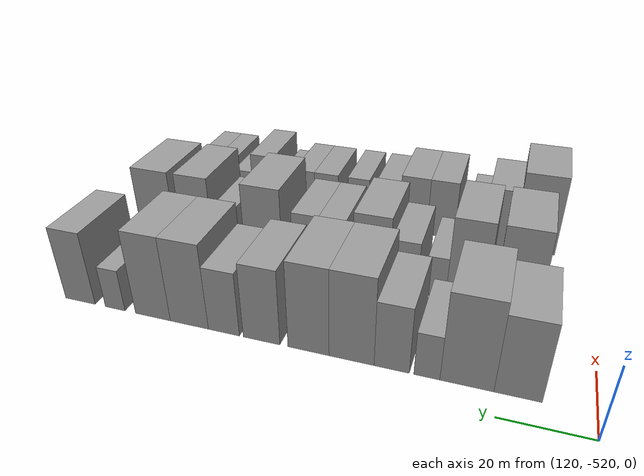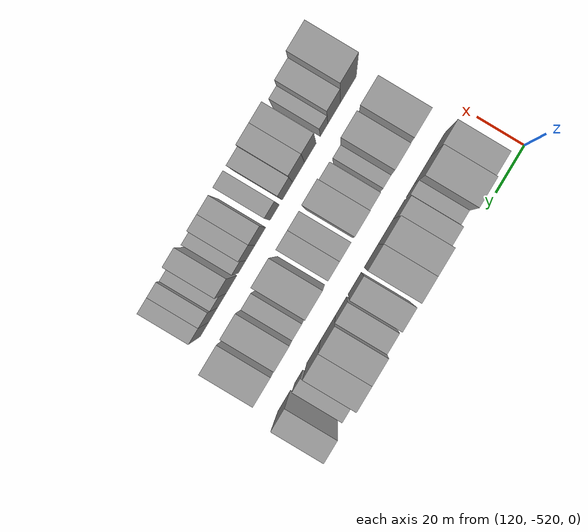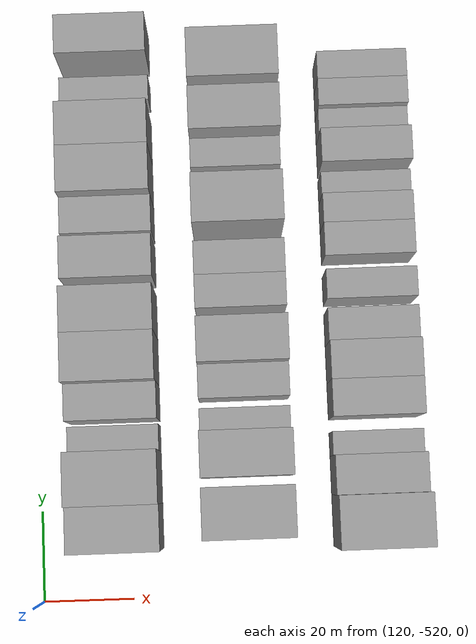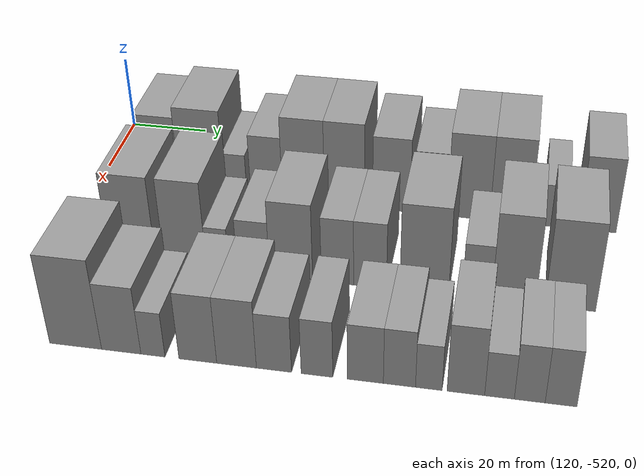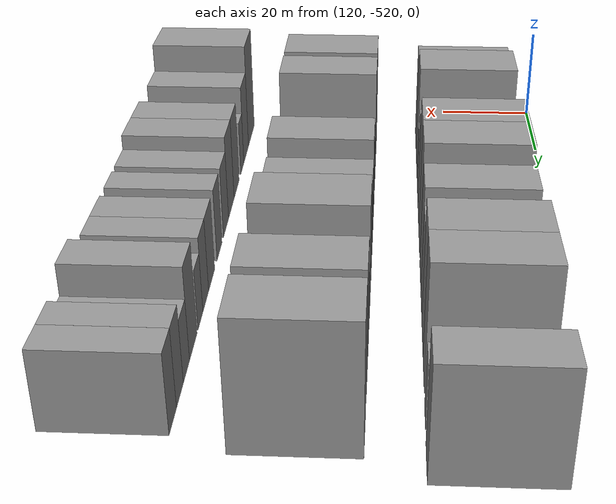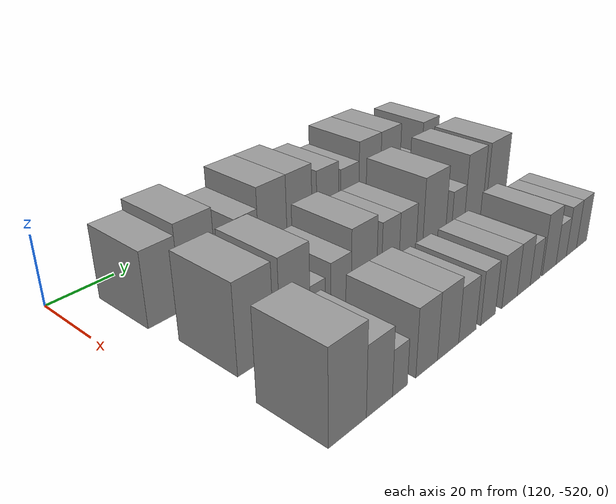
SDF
<sdf version="1.6">
 <world name="default">
  <model name="building_345">
   <static>1</static>
   <pose>137.0000 -504.0115 0 0.000000 0.000000 0.000000</pose>
   <link name="link">
    <pose>0 0 10.50 0 0 0</pose>
    <collision name="collision"><geometry><box><size>20.0000 9.9769 21.0000</size></box></geometry></collision>
    <visual name="visual">
     <cast_shadows>0</cast_shadows>
     <geometry><box><size>20.0000 9.9769 21.0000</size></box></geometry>
     <material>
      <script>
       <uri>model://grey_wall/materials/scripts</uri>
       <uri>model://grey_wall/materials/textures</uri>
       <name>vrc/grey_wall</name>
      </script>
     </material>
    </visual>
   </link>
  </model>
  <model name="building_346">
   <static>1</static>
   <pose>137.0000 -493.2510 0 0.000000 0.000000 0.000000</pose>
   <link name="link">
    <pose>0 0 12.00 0 0 0</pose>
    <collision name="collision"><geometry><box><size>20.0000 11.5442 24.0000</size></box></geometry></collision>
    <visual name="visual">
     <cast_shadows>0</cast_shadows>
     <geometry><box><size>20.0000 11.5442 24.0000</size></box></geometry>
     <material>
      <script>
       <uri>model://grey_wall/materials/scripts</uri>
       <uri>model://grey_wall/materials/textures</uri>
       <name>vrc/grey_wall</name>
      </script>
     </material>
    </visual>
   </link>
  </model>
  <model name="building_347">
   <static>1</static>
   <pose>137.0000 -484.6109 0 0.000000 0.000000 0.000000</pose>
   <link name="link">
    <pose>0 0 6.00 0 0 0</pose>
    <collision name="collision"><geometry><box><size>20.0000 5.7360 12.0000</size></box></geometry></collision>
    <visual name="visual">
     <cast_shadows>0</cast_shadows>
     <geometry><box><size>20.0000 5.7360 12.0000</size></box></geometry>
     <material>
      <script>
       <uri>model://grey_wall/materials/scripts</uri>
       <uri>model://grey_wall/materials/textures</uri>
       <name>vrc/grey_wall</name>
      </script>
     </material>
    </visual>
   </link>
  </model>
  <model name="building_348">
   <static>1</static>
   <pose>137.0000 -476.7423 0 0.000000 0.000000 0.000000</pose>
   <link name="link">
    <pose>0 0 9.00 0 0 0</pose>
    <collision name="collision"><geometry><box><size>20.0000 8.0011 18.0000</size></box></geometry></collision>
    <visual name="visual">
     <cast_shadows>0</cast_shadows>
     <geometry><box><size>20.0000 8.0011 18.0000</size></box></geometry>
     <material>
      <script>
       <uri>model://grey_wall/materials/scripts</uri>
       <uri>model://grey_wall/materials/textures</uri>
       <name>vrc/grey_wall</name>
      </script>
     </material>
    </visual>
   </link>
  </model>
  <model name="building_349">
   <static>1</static>
   <pose>137.0000 -467.4616 0 0.000000 0.000000 0.000000</pose>
   <link name="link">
    <pose>0 0 12.00 0 0 0</pose>
    <collision name="collision"><geometry><box><size>20.0000 10.5604 24.0000</size></box></geometry></collision>
    <visual name="visual">
     <cast_shadows>0</cast_shadows>
     <geometry><box><size>20.0000 10.5604 24.0000</size></box></geometry>
     <material>
      <script>
       <uri>model://grey_wall/materials/scripts</uri>
       <uri>model://grey_wall/materials/textures</uri>
       <name>vrc/grey_wall</name>
      </script>
     </material>
    </visual>
   </link>
  </model>
  <model name="building_350">
   <static>1</static>
   <pose>137.0000 -457.1980 0 0.000000 0.000000 0.000000</pose>
   <link name="link">
    <pose>0 0 12.00 0 0 0</pose>
    <collision name="collision"><geometry><box><size>20.0000 9.9667 24.0000</size></box></geometry></collision>
    <visual name="visual">
     <cast_shadows>0</cast_shadows>
     <geometry><box><size>20.0000 9.9667 24.0000</size></box></geometry>
     <material>
      <script>
       <uri>model://grey_wall/materials/scripts</uri>
       <uri>model://grey_wall/materials/textures</uri>
       <name>vrc/grey_wall</name>
      </script>
     </material>
    </visual>
   </link>
  </model>
  <model name="building_351">
   <static>1</static>
   <pose>137.0000 -445.5944 0 0.000000 0.000000 0.000000</pose>
   <link name="link">
    <pose>0 0 10.50 0 0 0</pose>
    <collision name="collision"><geometry><box><size>20.0000 9.2406 21.0000</size></box></geometry></collision>
    <visual name="visual">
     <cast_shadows>0</cast_shadows>
     <geometry><box><size>20.0000 9.2406 21.0000</size></box></geometry>
     <material>
      <script>
       <uri>model://grey_wall/materials/scripts</uri>
       <uri>model://grey_wall/materials/textures</uri>
       <name>vrc/grey_wall</name>
      </script>
     </material>
    </visual>
   </link>
  </model>
  <model name="building_352">
   <static>1</static>
   <pose>137.0000 -435.9169 0 0.000000 0.000000 0.000000</pose>
   <link name="link">
    <pose>0 0 9.00 0 0 0</pose>
    <collision name="collision"><geometry><box><size>20.0000 8.1144 18.0000</size></box></geometry></collision>
    <visual name="visual">
     <cast_shadows>0</cast_shadows>
     <geometry><box><size>20.0000 8.1144 18.0000</size></box></geometry>
     <material>
      <script>
       <uri>model://grey_wall/materials/scripts</uri>
       <uri>model://grey_wall/materials/textures</uri>
       <name>vrc/grey_wall</name>
      </script>
     </material>
    </visual>
   </link>
  </model>
  <model name="building_353">
   <static>1</static>
   <pose>137.0000 -426.7456 0 0.000000 0.000000 0.000000</pose>
   <link name="link">
    <pose>0 0 12.00 0 0 0</pose>
    <collision name="collision"><geometry><box><size>20.0000 10.2281 24.0000</size></box></geometry></collision>
    <visual name="visual">
     <cast_shadows>0</cast_shadows>
     <geometry><box><size>20.0000 10.2281 24.0000</size></box></geometry>
     <material>
      <script>
       <uri>model://grey_wall/materials/scripts</uri>
       <uri>model://grey_wall/materials/textures</uri>
       <name>vrc/grey_wall</name>
      </script>
     </material>
    </visual>
   </link>
  </model>
  <model name="building_354">
   <static>1</static>
   <pose>137.0000 -416.7948 0 0.000000 0.000000 0.000000</pose>
   <link name="link">
    <pose>0 0 12.00 0 0 0</pose>
    <collision name="collision"><geometry><box><size>20.0000 9.6735 24.0000</size></box></geometry></collision>
    <visual name="visual">
     <cast_shadows>0</cast_shadows>
     <geometry><box><size>20.0000 9.6735 24.0000</size></box></geometry>
     <material>
      <script>
       <uri>model://grey_wall/materials/scripts</uri>
       <uri>model://grey_wall/materials/textures</uri>
       <name>vrc/grey_wall</name>
      </script>
     </material>
    </visual>
   </link>
  </model>
  <model name="building_355">
   <static>1</static>
   <pose>137.0000 -406.1504 0 0.000000 0.000000 0.000000</pose>
   <link name="link">
    <pose>0 0 6.00 0 0 0</pose>
    <collision name="collision"><geometry><box><size>20.0000 5.6153 12.0000</size></box></geometry></collision>
    <visual name="visual">
     <cast_shadows>0</cast_shadows>
     <geometry><box><size>20.0000 5.6153 12.0000</size></box></geometry>
     <material>
      <script>
       <uri>model://grey_wall/materials/scripts</uri>
       <uri>model://grey_wall/materials/textures</uri>
       <name>vrc/grey_wall</name>
      </script>
     </material>
    </visual>
   </link>
  </model>
  <model name="building_356">
   <static>1</static>
   <pose>137.0000 -395.9926 0 0.000000 0.000000 0.000000</pose>
   <link name="link">
    <pose>0 0 10.50 0 0 0</pose>
    <collision name="collision"><geometry><box><size>20.0000 8.7003 21.0000</size></box></geometry></collision>
    <visual name="visual">
     <cast_shadows>0</cast_shadows>
     <geometry><box><size>20.0000 8.7003 21.0000</size></box></geometry>
     <material>
      <script>
       <uri>model://grey_wall/materials/scripts</uri>
       <uri>model://grey_wall/materials/textures</uri>
       <name>vrc/grey_wall</name>
      </script>
     </material>
    </visual>
   </link>
  </model>
  <model name="building_452">
   <static>1</static>
   <pose>166.0000 -501.4610 0 0.000000 0.000000 0.000000</pose>
   <link name="link">
    <pose>0 0 12.00 0 0 0</pose>
    <collision name="collision"><geometry><box><size>20.0000 11.0780 24.0000</size></box></geometry></collision>
    <visual name="visual">
     <cast_shadows>0</cast_shadows>
     <geometry><box><size>20.0000 11.0780 24.0000</size></box></geometry>
     <material>
      <script>
       <uri>model://grey_wall/materials/scripts</uri>
       <uri>model://grey_wall/materials/textures</uri>
       <name>vrc/grey_wall</name>
      </script>
     </material>
    </visual>
   </link>
  </model>
  <model name="building_453">
   <static>1</static>
   <pose>166.0000 -488.9550 0 0.000000 0.000000 0.000000</pose>
   <link name="link">
    <pose>0 0 12.00 0 0 0</pose>
    <collision name="collision"><geometry><box><size>20.0000 9.9340 24.0000</size></box></geometry></collision>
    <visual name="visual">
     <cast_shadows>0</cast_shadows>
     <geometry><box><size>20.0000 9.9340 24.0000</size></box></geometry>
     <material>
      <script>
       <uri>model://grey_wall/materials/scripts</uri>
       <uri>model://grey_wall/materials/textures</uri>
       <name>vrc/grey_wall</name>
      </script>
     </material>
    </visual>
   </link>
  </model>
  <model name="building_454">
   <static>1</static>
   <pose>166.0000 -481.3633 0 0.000000 0.000000 0.000000</pose>
   <link name="link">
    <pose>0 0 6.00 0 0 0</pose>
    <collision name="collision"><geometry><box><size>20.0000 5.2494 12.0000</size></box></geometry></collision>
    <visual name="visual">
     <cast_shadows>0</cast_shadows>
     <geometry><box><size>20.0000 5.2494 12.0000</size></box></geometry>
     <material>
      <script>
       <uri>model://grey_wall/materials/scripts</uri>
       <uri>model://grey_wall/materials/textures</uri>
       <name>vrc/grey_wall</name>
      </script>
     </material>
    </visual>
   </link>
  </model>
  <model name="building_455">
   <static>1</static>
   <pose>166.0000 -473.0006 0 0.000000 0.000000 0.000000</pose>
   <link name="link">
    <pose>0 0 7.50 0 0 0</pose>
    <collision name="collision"><geometry><box><size>20.0000 7.4759 15.0000</size></box></geometry></collision>
    <visual name="visual">
     <cast_shadows>0</cast_shadows>
     <geometry><box><size>20.0000 7.4759 15.0000</size></box></geometry>
     <material>
      <script>
       <uri>model://grey_wall/materials/scripts</uri>
       <uri>model://grey_wall/materials/textures</uri>
       <name>vrc/grey_wall</name>
      </script>
     </material>
    </visual>
   </link>
  </model>
  <model name="building_456">
   <static>1</static>
   <pose>166.0000 -464.3026 0 0.000000 0.000000 0.000000</pose>
   <link name="link">
    <pose>0 0 10.50 0 0 0</pose>
    <collision name="collision"><geometry><box><size>20.0000 9.9203 21.0000</size></box></geometry></collision>
    <visual name="visual">
     <cast_shadows>0</cast_shadows>
     <geometry><box><size>20.0000 9.9203 21.0000</size></box></geometry>
     <material>
      <script>
       <uri>model://grey_wall/materials/scripts</uri>
       <uri>model://grey_wall/materials/textures</uri>
       <name>vrc/grey_wall</name>
      </script>
     </material>
    </visual>
   </link>
  </model>
  <model name="building_457">
   <static>1</static>
   <pose>166.0000 -453.6664 0 0.000000 0.000000 0.000000</pose>
   <link name="link">
    <pose>0 0 9.00 0 0 0</pose>
    <collision name="collision"><geometry><box><size>20.0000 7.3521 18.0000</size></box></geometry></collision>
    <visual name="visual">
     <cast_shadows>0</cast_shadows>
     <geometry><box><size>20.0000 7.3521 18.0000</size></box></geometry>
     <material>
      <script>
       <uri>model://grey_wall/materials/scripts</uri>
       <uri>model://grey_wall/materials/textures</uri>
       <name>vrc/grey_wall</name>
      </script>
     </material>
    </visual>
   </link>
  </model>
  <model name="building_458">
   <static>1</static>
   <pose>166.0000 -446.2696 0 0.000000 0.000000 0.000000</pose>
   <link name="link">
    <pose>0 0 9.00 0 0 0</pose>
    <collision name="collision"><geometry><box><size>20.0000 7.4415 18.0000</size></box></geometry></collision>
    <visual name="visual">
     <cast_shadows>0</cast_shadows>
     <geometry><box><size>20.0000 7.4415 18.0000</size></box></geometry>
     <material>
      <script>
       <uri>model://grey_wall/materials/scripts</uri>
       <uri>model://grey_wall/materials/textures</uri>
       <name>vrc/grey_wall</name>
      </script>
     </material>
    </visual>
   </link>
  </model>
  <model name="building_459">
   <static>1</static>
   <pose>166.0000 -434.0864 0 0.000000 0.000000 0.000000</pose>
   <link name="link">
    <pose>0 0 12.00 0 0 0</pose>
    <collision name="collision"><geometry><box><size>20.0000 10.9249 24.0000</size></box></geometry></collision>
    <visual name="visual">
     <cast_shadows>0</cast_shadows>
     <geometry><box><size>20.0000 10.9249 24.0000</size></box></geometry>
     <material>
      <script>
       <uri>model://grey_wall/materials/scripts</uri>
       <uri>model://grey_wall/materials/textures</uri>
       <name>vrc/grey_wall</name>
      </script>
     </material>
    </visual>
   </link>
  </model>
  <model name="building_460">
   <static>1</static>
   <pose>166.0000 -422.3600 0 0.000000 0.000000 0.000000</pose>
   <link name="link">
    <pose>0 0 7.50 0 0 0</pose>
    <collision name="collision"><geometry><box><size>20.0000 6.5278 15.0000</size></box></geometry></collision>
    <visual name="visual">
     <cast_shadows>0</cast_shadows>
     <geometry><box><size>20.0000 6.5278 15.0000</size></box></geometry>
     <material>
      <script>
       <uri>model://grey_wall/materials/scripts</uri>
       <uri>model://grey_wall/materials/textures</uri>
       <name>vrc/grey_wall</name>
      </script>
     </material>
    </visual>
   </link>
  </model>
  <model name="building_461">
   <static>1</static>
   <pose>166.0000 -414.2925 0 0.000000 0.000000 0.000000</pose>
   <link name="link">
    <pose>0 0 12.00 0 0 0</pose>
    <collision name="collision"><geometry><box><size>20.0000 9.6072 24.0000</size></box></geometry></collision>
    <visual name="visual">
     <cast_shadows>0</cast_shadows>
     <geometry><box><size>20.0000 9.6072 24.0000</size></box></geometry>
     <material>
      <script>
       <uri>model://grey_wall/materials/scripts</uri>
       <uri>model://grey_wall/materials/textures</uri>
       <name>vrc/grey_wall</name>
      </script>
     </material>
    </visual>
   </link>
  </model>
  <model name="building_462">
   <static>1</static>
   <pose>166.0000 -402.0019 0 0.000000 0.000000 0.000000</pose>
   <link name="link">
    <pose>0 0 12.00 0 0 0</pose>
    <collision name="collision"><geometry><box><size>20.0000 10.9740 24.0000</size></box></geometry></collision>
    <visual name="visual">
     <cast_shadows>0</cast_shadows>
     <geometry><box><size>20.0000 10.9740 24.0000</size></box></geometry>
     <material>
      <script>
       <uri>model://grey_wall/materials/scripts</uri>
       <uri>model://grey_wall/materials/textures</uri>
       <name>vrc/grey_wall</name>
      </script>
     </material>
    </visual>
   </link>
  </model>
  <model name="building_563">
   <static>1</static>
   <pose>195.0000 -504.2820 0 0.000000 0.000000 0.000000</pose>
   <link name="link">
    <pose>0 0 12.00 0 0 0</pose>
    <collision name="collision"><geometry><box><size>20.0000 11.4360 24.0000</size></box></geometry></collision>
    <visual name="visual">
     <cast_shadows>0</cast_shadows>
     <geometry><box><size>20.0000 11.4360 24.0000</size></box></geometry>
     <material>
      <script>
       <uri>model://grey_wall/materials/scripts</uri>
       <uri>model://grey_wall/materials/textures</uri>
       <name>vrc/grey_wall</name>
      </script>
     </material>
    </visual>
   </link>
  </model>
  <model name="building_564">
   <static>1</static>
   <pose>195.0000 -494.2819 0 0.000000 0.000000 0.000000</pose>
   <link name="link">
    <pose>0 0 9.00 0 0 0</pose>
    <collision name="collision"><geometry><box><size>20.0000 8.5642 18.0000</size></box></geometry></collision>
    <visual name="visual">
     <cast_shadows>0</cast_shadows>
     <geometry><box><size>20.0000 8.5642 18.0000</size></box></geometry>
     <material>
      <script>
       <uri>model://grey_wall/materials/scripts</uri>
       <uri>model://grey_wall/materials/textures</uri>
       <name>vrc/grey_wall</name>
      </script>
     </material>
    </visual>
   </link>
  </model>
  <model name="building_565">
   <static>1</static>
   <pose>195.0000 -487.3970 0 0.000000 0.000000 0.000000</pose>
   <link name="link">
    <pose>0 0 6.00 0 0 0</pose>
    <collision name="collision"><geometry><box><size>20.0000 5.2057 12.0000</size></box></geometry></collision>
    <visual name="visual">
     <cast_shadows>0</cast_shadows>
     <geometry><box><size>20.0000 5.2057 12.0000</size></box></geometry>
     <material>
      <script>
       <uri>model://grey_wall/materials/scripts</uri>
       <uri>model://grey_wall/materials/textures</uri>
       <name>vrc/grey_wall</name>
      </script>
     </material>
    </visual>
   </link>
  </model>
  <model name="building_566">
   <static>1</static>
   <pose>195.0000 -477.7528 0 0.000000 0.000000 0.000000</pose>
   <link name="link">
    <pose>0 0 9.00 0 0 0</pose>
    <collision name="collision"><geometry><box><size>20.0000 8.0827 18.0000</size></box></geometry></collision>
    <visual name="visual">
     <cast_shadows>0</cast_shadows>
     <geometry><box><size>20.0000 8.0827 18.0000</size></box></geometry>
     <material>
      <script>
       <uri>model://grey_wall/materials/scripts</uri>
       <uri>model://grey_wall/materials/textures</uri>
       <name>vrc/grey_wall</name>
      </script>
     </material>
    </visual>
   </link>
  </model>
  <model name="building_567">
   <static>1</static>
   <pose>195.0000 -469.5093 0 0.000000 0.000000 0.000000</pose>
   <link name="link">
    <pose>0 0 9.00 0 0 0</pose>
    <collision name="collision"><geometry><box><size>20.0000 8.4044 18.0000</size></box></geometry></collision>
    <visual name="visual">
     <cast_shadows>0</cast_shadows>
     <geometry><box><size>20.0000 8.4044 18.0000</size></box></geometry>
     <material>
      <script>
       <uri>model://grey_wall/materials/scripts</uri>
       <uri>model://grey_wall/materials/textures</uri>
       <name>vrc/grey_wall</name>
      </script>
     </material>
    </visual>
   </link>
  </model>
  <model name="building_568">
   <static>1</static>
   <pose>195.0000 -461.6148 0 0.000000 0.000000 0.000000</pose>
   <link name="link">
    <pose>0 0 7.50 0 0 0</pose>
    <collision name="collision"><geometry><box><size>20.0000 7.3845 15.0000</size></box></geometry></collision>
    <visual name="visual">
     <cast_shadows>0</cast_shadows>
     <geometry><box><size>20.0000 7.3845 15.0000</size></box></geometry>
     <material>
      <script>
       <uri>model://grey_wall/materials/scripts</uri>
       <uri>model://grey_wall/materials/textures</uri>
       <name>vrc/grey_wall</name>
      </script>
     </material>
    </visual>
   </link>
  </model>
  <model name="building_569">
   <static>1</static>
   <pose>195.0000 -452.6329 0 0.000000 0.000000 0.000000</pose>
   <link name="link">
    <pose>0 0 7.50 0 0 0</pose>
    <collision name="collision"><geometry><box><size>20.0000 6.5794 15.0000</size></box></geometry></collision>
    <visual name="visual">
     <cast_shadows>0</cast_shadows>
     <geometry><box><size>20.0000 6.5794 15.0000</size></box></geometry>
     <material>
      <script>
       <uri>model://grey_wall/materials/scripts</uri>
       <uri>model://grey_wall/materials/textures</uri>
       <name>vrc/grey_wall</name>
      </script>
     </material>
    </visual>
   </link>
  </model>
  <model name="building_570">
   <static>1</static>
   <pose>195.0000 -442.6426 0 0.000000 0.000000 0.000000</pose>
   <link name="link">
    <pose>0 0 7.50 0 0 0</pose>
    <collision name="collision"><geometry><box><size>20.0000 7.4013 15.0000</size></box></geometry></collision>
    <visual name="visual">
     <cast_shadows>0</cast_shadows>
     <geometry><box><size>20.0000 7.4013 15.0000</size></box></geometry>
     <material>
      <script>
       <uri>model://grey_wall/materials/scripts</uri>
       <uri>model://grey_wall/materials/textures</uri>
       <name>vrc/grey_wall</name>
      </script>
     </material>
    </visual>
   </link>
  </model>
  <model name="building_571">
   <static>1</static>
   <pose>195.0000 -435.6686 0 0.000000 0.000000 0.000000</pose>
   <link name="link">
    <pose>0 0 7.50 0 0 0</pose>
    <collision name="collision"><geometry><box><size>20.0000 6.5467 15.0000</size></box></geometry></collision>
    <visual name="visual">
     <cast_shadows>0</cast_shadows>
     <geometry><box><size>20.0000 6.5467 15.0000</size></box></geometry>
     <material>
      <script>
       <uri>model://grey_wall/materials/scripts</uri>
       <uri>model://grey_wall/materials/textures</uri>
       <name>vrc/grey_wall</name>
      </script>
     </material>
    </visual>
   </link>
  </model>
  <model name="building_572">
   <static>1</static>
   <pose>195.0000 -429.7006 0 0.000000 0.000000 0.000000</pose>
   <link name="link">
    <pose>0 0 6.00 0 0 0</pose>
    <collision name="collision"><geometry><box><size>20.0000 5.3891 12.0000</size></box></geometry></collision>
    <visual name="visual">
     <cast_shadows>0</cast_shadows>
     <geometry><box><size>20.0000 5.3891 12.0000</size></box></geometry>
     <material>
      <script>
       <uri>model://grey_wall/materials/scripts</uri>
       <uri>model://grey_wall/materials/textures</uri>
       <name>vrc/grey_wall</name>
      </script>
     </material>
    </visual>
   </link>
  </model>
  <model name="building_573">
   <static>1</static>
   <pose>195.0000 -422.2367 0 0.000000 0.000000 0.000000</pose>
   <link name="link">
    <pose>0 0 9.00 0 0 0</pose>
    <collision name="collision"><geometry><box><size>20.0000 7.5388 18.0000</size></box></geometry></collision>
    <visual name="visual">
     <cast_shadows>0</cast_shadows>
     <geometry><box><size>20.0000 7.5388 18.0000</size></box></geometry>
     <material>
      <script>
       <uri>model://grey_wall/materials/scripts</uri>
       <uri>model://grey_wall/materials/textures</uri>
       <name>vrc/grey_wall</name>
      </script>
     </material>
    </visual>
   </link>
  </model>
  <model name="building_574">
   <static>1</static>
   <pose>195.0000 -415.5166 0 0.000000 0.000000 0.000000</pose>
   <link name="link">
    <pose>0 0 6.00 0 0 0</pose>
    <collision name="collision"><geometry><box><size>20.0000 5.9014 12.0000</size></box></geometry></collision>
    <visual name="visual">
     <cast_shadows>0</cast_shadows>
     <geometry><box><size>20.0000 5.9014 12.0000</size></box></geometry>
     <material>
      <script>
       <uri>model://grey_wall/materials/scripts</uri>
       <uri>model://grey_wall/materials/textures</uri>
       <name>vrc/grey_wall</name>
      </script>
     </material>
    </visual>
   </link>
  </model>
  <model name="building_575">
   <static>1</static>
   <pose>195.0000 -409.5212 0 0.000000 0.000000 0.000000</pose>
   <link name="link">
    <pose>0 0 7.50 0 0 0</pose>
    <collision name="collision"><geometry><box><size>20.0000 6.0894 15.0000</size></box></geometry></collision>
    <visual name="visual">
     <cast_shadows>0</cast_shadows>
     <geometry><box><size>20.0000 6.0894 15.0000</size></box></geometry>
     <material>
      <script>
       <uri>model://grey_wall/materials/scripts</uri>
       <uri>model://grey_wall/materials/textures</uri>
       <name>vrc/grey_wall</name>
      </script>
     </material>
    </visual>
   </link>
  </model>
  <model name="building_576">
   <static>1</static>
   <pose>195.0000 -403.3436 0 0.000000 0.000000 0.000000</pose>
   <link name="link">
    <pose>0 0 7.50 0 0 0</pose>
    <collision name="collision"><geometry><box><size>20.0000 6.2657 15.0000</size></box></geometry></collision>
    <visual name="visual">
     <cast_shadows>0</cast_shadows>
     <geometry><box><size>20.0000 6.2657 15.0000</size></box></geometry>
     <material>
      <script>
       <uri>model://grey_wall/materials/scripts</uri>
       <uri>model://grey_wall/materials/textures</uri>
       <name>vrc/grey_wall</name>
      </script>
     </material>
    </visual>
   </link>
  </model>
 </world>
</sdf>
